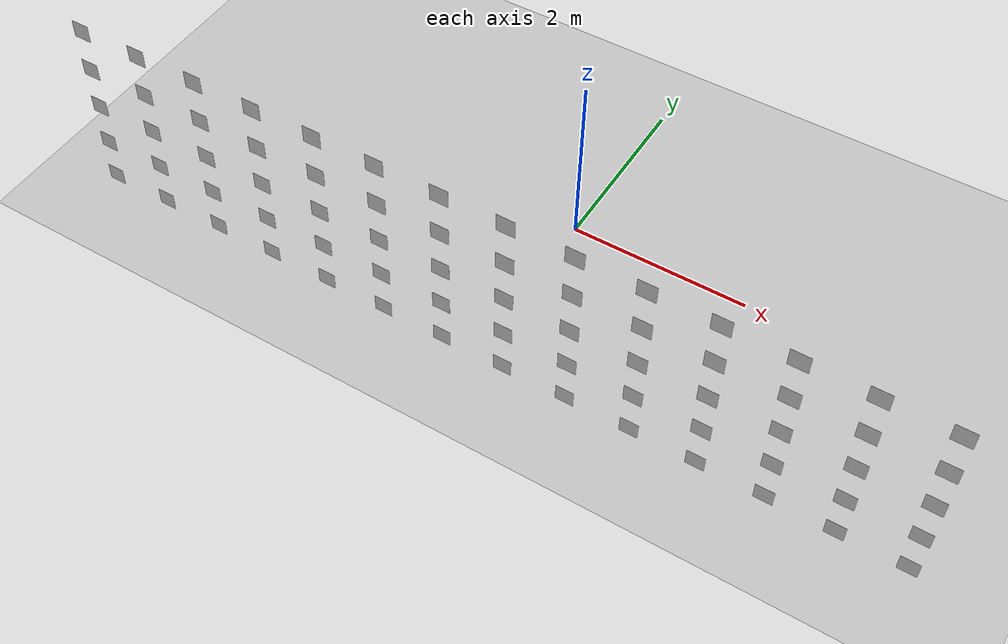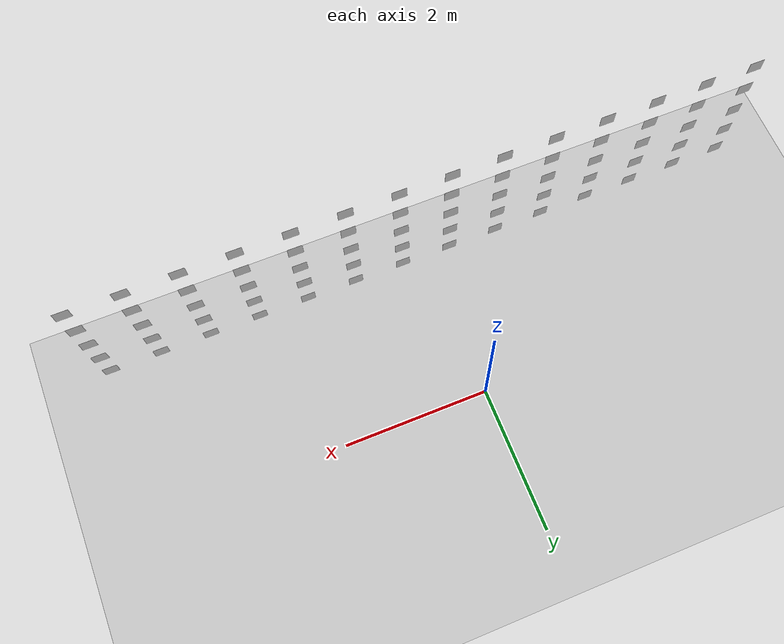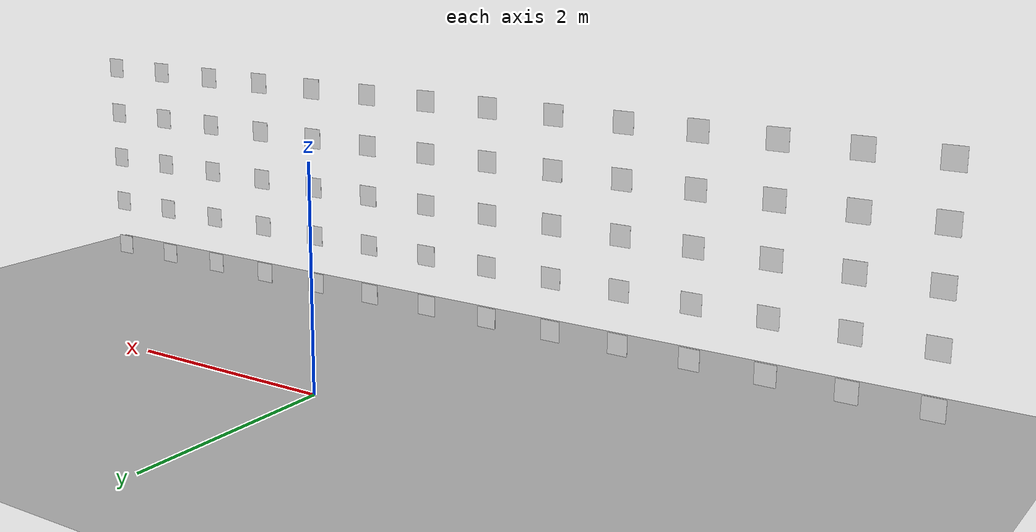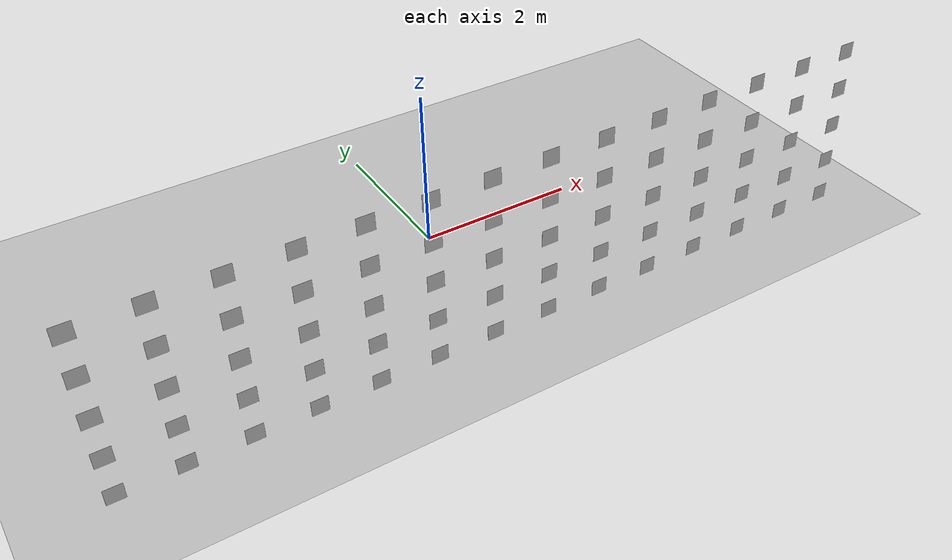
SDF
<sdf version="1.6">
 <world name="default">
  <model name="ground_plane">
   <static>1</static>
   <link name="link">
    <collision name="collision">
     <geometry><plane><normal>0 0 1</normal><size>100 100</size></plane></geometry>
     <surface><friction><ode><mu>100</mu><mu2>50</mu2></ode></friction></surface>
    </collision>
    <visual name="visual">
     <cast_shadows>0</cast_shadows>
     <geometry><plane><normal>0 0 1</normal><size>100 100</size></plane></geometry>
     <material>
      <script><uri>file://media/materials/scripts/gazebo.material</uri><name>Gazebo/Grey</name></script>
     </material>
    </visual>
   </link>
  </model>
  <model name="home1_tag4">
   <model name="aruco170">
    <static>1</static>
    <link name="link">
     <pose>0 0 0.1 0 -0 0</pose>
     <collision name="collision"><geometry><box><size>0.2 0.001 0.2</size></box></geometry></collision>
     <visual name="visual">
      <cast_shadows>0</cast_shadows>
      <geometry><box><size>0.2 0.001 0.2</size></box></geometry>
      <material>
       <script>
        <uri>model://aruco170/materials/scripts</uri>
        <uri>model://aruco170/materials/textures</uri>
        <name>vrc/aruco170</name>
       </script>
      </material>
     </visual>
    </link>
    <pose>0 -2 0.1 0 -0 3.14</pose>
   </model>
   <model name="aruco171">
    <static>1</static>
    <link name="link">
     <pose>0 0 0.1 0 -0 0</pose>
     <collision name="collision"><geometry><box><size>0.2 0.001 0.2</size></box></geometry></collision>
     <visual name="visual">
      <cast_shadows>0</cast_shadows>
      <geometry><box><size>0.2 0.001 0.2</size></box></geometry>
      <material>
       <script>
        <uri>model://aruco171/materials/scripts</uri>
        <uri>model://aruco171/materials/textures</uri>
        <name>vrc/aruco171</name>
       </script>
      </material>
     </visual>
    </link>
    <pose>0.7 -2 0.1 0 -0 3.14</pose>
   </model>
   <model name="aruco172">
    <static>1</static>
    <link name="link">
     <pose>0 0 0.1 0 -0 0</pose>
     <collision name="collision"><geometry><box><size>0.2 0.001 0.2</size></box></geometry></collision>
     <visual name="visual">
      <cast_shadows>0</cast_shadows>
      <geometry><box><size>0.2 0.001 0.2</size></box></geometry>
      <material>
       <script>
        <uri>model://aruco172/materials/scripts</uri>
        <uri>model://aruco172/materials/textures</uri>
        <name>vrc/aruco172</name>
       </script>
      </material>
     </visual>
    </link>
    <pose>1.4 -2 0.1 0 -0 3.14</pose>
   </model>
   <model name="aruco173">
    <static>1</static>
    <link name="link">
     <pose>0 0 0.1 0 -0 0</pose>
     <collision name="collision"><geometry><box><size>0.2 0.001 0.2</size></box></geometry></collision>
     <visual name="visual">
      <cast_shadows>0</cast_shadows>
      <geometry><box><size>0.2 0.001 0.2</size></box></geometry>
      <material>
       <script>
        <uri>model://aruco173/materials/scripts</uri>
        <uri>model://aruco173/materials/textures</uri>
        <name>vrc/aruco173</name>
       </script>
      </material>
     </visual>
    </link>
    <pose>2.1 -2 0.1 0 -0 3.14</pose>
   </model>
   <model name="aruco174">
    <static>1</static>
    <link name="link">
     <pose>0 0 0.1 0 -0 0</pose>
     <collision name="collision"><geometry><box><size>0.2 0.001 0.2</size></box></geometry></collision>
     <visual name="visual">
      <cast_shadows>0</cast_shadows>
      <geometry><box><size>0.2 0.001 0.2</size></box></geometry>
      <material>
       <script>
        <uri>model://aruco174/materials/scripts</uri>
        <uri>model://aruco174/materials/textures</uri>
        <name>vrc/aruco174</name>
       </script>
      </material>
     </visual>
    </link>
    <pose>2.8 -2 0.1 0 -0 3.14</pose>
   </model>
   <model name="aruco175">
    <static>1</static>
    <link name="link">
     <pose>0 0 0.1 0 -0 0</pose>
     <collision name="collision"><geometry><box><size>0.2 0.001 0.2</size></box></geometry></collision>
     <visual name="visual">
      <cast_shadows>0</cast_shadows>
      <geometry><box><size>0.2 0.001 0.2</size></box></geometry>
      <material>
       <script>
        <uri>model://aruco175/materials/scripts</uri>
        <uri>model://aruco175/materials/textures</uri>
        <name>vrc/aruco175</name>
       </script>
      </material>
     </visual>
    </link>
    <pose>3.5 -2 0.1 0 -0 3.14</pose>
   </model>
   <model name="aruco176">
    <static>1</static>
    <link name="link">
     <pose>0 0 0.1 0 -0 0</pose>
     <collision name="collision"><geometry><box><size>0.2 0.001 0.2</size></box></geometry></collision>
     <visual name="visual">
      <cast_shadows>0</cast_shadows>
      <geometry><box><size>0.2 0.001 0.2</size></box></geometry>
      <material>
       <script>
        <uri>model://aruco176/materials/scripts</uri>
        <uri>model://aruco176/materials/textures</uri>
        <name>vrc/aruco176</name>
       </script>
      </material>
     </visual>
    </link>
    <pose>4.2 -2 0.1 0 -0 3.14</pose>
   </model>
   <model name="aruco177">
    <static>1</static>
    <link name="link">
     <pose>0 0 0.1 0 -0 0</pose>
     <collision name="collision"><geometry><box><size>0.2 0.001 0.2</size></box></geometry></collision>
     <visual name="visual">
      <cast_shadows>0</cast_shadows>
      <geometry><box><size>0.2 0.001 0.2</size></box></geometry>
      <material>
       <script>
        <uri>model://aruco177/materials/scripts</uri>
        <uri>model://aruco177/materials/textures</uri>
        <name>vrc/aruco177</name>
       </script>
      </material>
     </visual>
    </link>
    <pose>4.9 -2 0.1 0 -0 3.14</pose>
   </model>
   <model name="aruco178">
    <static>1</static>
    <link name="link">
     <pose>0 0 0.1 0 -0 0</pose>
     <collision name="collision"><geometry><box><size>0.2 0.001 0.2</size></box></geometry></collision>
     <visual name="visual">
      <cast_shadows>0</cast_shadows>
      <geometry><box><size>0.2 0.001 0.2</size></box></geometry>
      <material>
       <script>
        <uri>model://aruco178/materials/scripts</uri>
        <uri>model://aruco178/materials/textures</uri>
        <name>vrc/aruco178</name>
       </script>
      </material>
     </visual>
    </link>
    <pose>5.6 -2 0.1 0 -0 3.14</pose>
   </model>
   <model name="aruco179">
    <static>1</static>
    <link name="link">
     <pose>0 0 0.1 0 -0 0</pose>
     <collision name="collision"><geometry><box><size>0.2 0.001 0.2</size></box></geometry></collision>
     <visual name="visual">
      <cast_shadows>0</cast_shadows>
      <geometry><box><size>0.2 0.001 0.2</size></box></geometry>
      <material>
       <script>
        <uri>model://aruco179/materials/scripts</uri>
        <uri>model://aruco179/materials/textures</uri>
        <name>vrc/aruco179</name>
       </script>
      </material>
     </visual>
    </link>
    <pose>6.3 -2 0.1 0 -0 3.14</pose>
   </model>
   <model name="aruco180">
    <static>1</static>
    <link name="link">
     <pose>0 0 0.1 0 -0 0</pose>
     <collision name="collision"><geometry><box><size>0.2 0.001 0.2</size></box></geometry></collision>
     <visual name="visual">
      <cast_shadows>0</cast_shadows>
      <geometry><box><size>0.2 0.001 0.2</size></box></geometry>
      <material>
       <script>
        <uri>model://aruco180/materials/scripts</uri>
        <uri>model://aruco180/materials/textures</uri>
        <name>vrc/aruco180</name>
       </script>
      </material>
     </visual>
    </link>
    <pose>7 -2 0.1 0 -0 3.14</pose>
   </model>
   <model name="aruco181">
    <static>1</static>
    <link name="link">
     <pose>0 0 0.1 0 -0 0</pose>
     <collision name="collision"><geometry><box><size>0.2 0.001 0.2</size></box></geometry></collision>
     <visual name="visual">
      <cast_shadows>0</cast_shadows>
      <geometry><box><size>0.2 0.001 0.2</size></box></geometry>
      <material>
       <script>
        <uri>model://aruco181/materials/scripts</uri>
        <uri>model://aruco181/materials/textures</uri>
        <name>vrc/aruco181</name>
       </script>
      </material>
     </visual>
    </link>
    <pose>7.7 -2 0.1 0 -0 3.14</pose>
   </model>
   <model name="aruco182">
    <static>1</static>
    <link name="link">
     <pose>0 0 0.1 0 -0 0</pose>
     <collision name="collision"><geometry><box><size>0.2 0.001 0.2</size></box></geometry></collision>
     <visual name="visual">
      <cast_shadows>0</cast_shadows>
      <geometry><box><size>0.2 0.001 0.2</size></box></geometry>
      <material>
       <script>
        <uri>model://aruco182/materials/scripts</uri>
        <uri>model://aruco182/materials/textures</uri>
        <name>vrc/aruco182</name>
       </script>
      </material>
     </visual>
    </link>
    <pose>8.4 -2 0.1 0 -0 3.14</pose>
   </model>
   <model name="aruco183">
    <static>1</static>
    <link name="link">
     <pose>0 0 0.1 0 -0 0</pose>
     <collision name="collision"><geometry><box><size>0.2 0.001 0.2</size></box></geometry></collision>
     <visual name="visual">
      <cast_shadows>0</cast_shadows>
      <geometry><box><size>0.2 0.001 0.2</size></box></geometry>
      <material>
       <script>
        <uri>model://aruco183/materials/scripts</uri>
        <uri>model://aruco183/materials/textures</uri>
        <name>vrc/aruco183</name>
       </script>
      </material>
     </visual>
    </link>
    <pose>9.1 -2 0.1 0 -0 3.14</pose>
   </model>
   <model name="aruco184">
    <static>1</static>
    <link name="link">
     <pose>0 0 0.1 0 -0 0</pose>
     <collision name="collision"><geometry><box><size>0.2 0.001 0.2</size></box></geometry></collision>
     <visual name="visual">
      <cast_shadows>0</cast_shadows>
      <geometry><box><size>0.2 0.001 0.2</size></box></geometry>
      <material>
       <script>
        <uri>model://aruco184/materials/scripts</uri>
        <uri>model://aruco184/materials/textures</uri>
        <name>vrc/aruco184</name>
       </script>
      </material>
     </visual>
    </link>
    <pose>0 -2 0.6 0 -0 3.14</pose>
   </model>
   <model name="aruco185">
    <static>1</static>
    <link name="link">
     <pose>0 0 0.1 0 -0 0</pose>
     <collision name="collision"><geometry><box><size>0.2 0.001 0.2</size></box></geometry></collision>
     <visual name="visual">
      <cast_shadows>0</cast_shadows>
      <geometry><box><size>0.2 0.001 0.2</size></box></geometry>
      <material>
       <script>
        <uri>model://aruco185/materials/scripts</uri>
        <uri>model://aruco185/materials/textures</uri>
        <name>vrc/aruco185</name>
       </script>
      </material>
     </visual>
    </link>
    <pose>0.7 -2 0.6 0 -0 3.14</pose>
   </model>
   <model name="aruco186">
    <static>1</static>
    <link name="link">
     <pose>0 0 0.1 0 -0 0</pose>
     <collision name="collision"><geometry><box><size>0.2 0.001 0.2</size></box></geometry></collision>
     <visual name="visual">
      <cast_shadows>0</cast_shadows>
      <geometry><box><size>0.2 0.001 0.2</size></box></geometry>
      <material>
       <script>
        <uri>model://aruco186/materials/scripts</uri>
        <uri>model://aruco186/materials/textures</uri>
        <name>vrc/aruco186</name>
       </script>
      </material>
     </visual>
    </link>
    <pose>1.4 -2 0.6 0 -0 3.14</pose>
   </model>
   <model name="aruco187">
    <static>1</static>
    <link name="link">
     <pose>0 0 0.1 0 -0 0</pose>
     <collision name="collision"><geometry><box><size>0.2 0.001 0.2</size></box></geometry></collision>
     <visual name="visual">
      <cast_shadows>0</cast_shadows>
      <geometry><box><size>0.2 0.001 0.2</size></box></geometry>
      <material>
       <script>
        <uri>model://aruco187/materials/scripts</uri>
        <uri>model://aruco187/materials/textures</uri>
        <name>vrc/aruco187</name>
       </script>
      </material>
     </visual>
    </link>
    <pose>2.1 -2 0.6 0 -0 3.14</pose>
   </model>
   <model name="aruco188">
    <static>1</static>
    <link name="link">
     <pose>0 0 0.1 0 -0 0</pose>
     <collision name="collision"><geometry><box><size>0.2 0.001 0.2</size></box></geometry></collision>
     <visual name="visual">
      <cast_shadows>0</cast_shadows>
      <geometry><box><size>0.2 0.001 0.2</size></box></geometry>
      <material>
       <script>
        <uri>model://aruco188/materials/scripts</uri>
        <uri>model://aruco188/materials/textures</uri>
        <name>vrc/aruco188</name>
       </script>
      </material>
     </visual>
    </link>
    <pose>2.8 -2 0.6 0 -0 3.14</pose>
   </model>
   <model name="aruco189">
    <static>1</static>
    <link name="link">
     <pose>0 0 0.1 0 -0 0</pose>
     <collision name="collision"><geometry><box><size>0.2 0.001 0.2</size></box></geometry></collision>
     <visual name="visual">
      <cast_shadows>0</cast_shadows>
      <geometry><box><size>0.2 0.001 0.2</size></box></geometry>
      <material>
       <script>
        <uri>model://aruco189/materials/scripts</uri>
        <uri>model://aruco189/materials/textures</uri>
        <name>vrc/aruco189</name>
       </script>
      </material>
     </visual>
    </link>
    <pose>3.5 -2 0.6 0 -0 3.14</pose>
   </model>
   <model name="aruco190">
    <static>1</static>
    <link name="link">
     <pose>0 0 0.1 0 -0 0</pose>
     <collision name="collision"><geometry><box><size>0.2 0.001 0.2</size></box></geometry></collision>
     <visual name="visual">
      <cast_shadows>0</cast_shadows>
      <geometry><box><size>0.2 0.001 0.2</size></box></geometry>
      <material>
       <script>
        <uri>model://aruco190/materials/scripts</uri>
        <uri>model://aruco190/materials/textures</uri>
        <name>vrc/aruco190</name>
       </script>
      </material>
     </visual>
    </link>
    <pose>4.2 -2 0.6 0 -0 3.14</pose>
   </model>
   <model name="aruco191">
    <static>1</static>
    <link name="link">
     <pose>0 0 0.1 0 -0 0</pose>
     <collision name="collision"><geometry><box><size>0.2 0.001 0.2</size></box></geometry></collision>
     <visual name="visual">
      <cast_shadows>0</cast_shadows>
      <geometry><box><size>0.2 0.001 0.2</size></box></geometry>
      <material>
       <script>
        <uri>model://aruco191/materials/scripts</uri>
        <uri>model://aruco191/materials/textures</uri>
        <name>vrc/aruco191</name>
       </script>
      </material>
     </visual>
    </link>
    <pose>4.9 -2 0.6 0 -0 3.14</pose>
   </model>
   <model name="aruco192">
    <static>1</static>
    <link name="link">
     <pose>0 0 0.1 0 -0 0</pose>
     <collision name="collision"><geometry><box><size>0.2 0.001 0.2</size></box></geometry></collision>
     <visual name="visual">
      <cast_shadows>0</cast_shadows>
      <geometry><box><size>0.2 0.001 0.2</size></box></geometry>
      <material>
       <script>
        <uri>model://aruco192/materials/scripts</uri>
        <uri>model://aruco192/materials/textures</uri>
        <name>vrc/aruco192</name>
       </script>
      </material>
     </visual>
    </link>
    <pose>5.6 -2 0.6 0 -0 3.14</pose>
   </model>
   <model name="aruco193">
    <static>1</static>
    <link name="link">
     <pose>0 0 0.1 0 -0 0</pose>
     <collision name="collision"><geometry><box><size>0.2 0.001 0.2</size></box></geometry></collision>
     <visual name="visual">
      <cast_shadows>0</cast_shadows>
      <geometry><box><size>0.2 0.001 0.2</size></box></geometry>
      <material>
       <script>
        <uri>model://aruco193/materials/scripts</uri>
        <uri>model://aruco193/materials/textures</uri>
        <name>vrc/aruco193</name>
       </script>
      </material>
     </visual>
    </link>
    <pose>6.3 -2 0.6 0 -0 3.14</pose>
   </model>
   <model name="aruco194">
    <static>1</static>
    <link name="link">
     <pose>0 0 0.1 0 -0 0</pose>
     <collision name="collision"><geometry><box><size>0.2 0.001 0.2</size></box></geometry></collision>
     <visual name="visual">
      <cast_shadows>0</cast_shadows>
      <geometry><box><size>0.2 0.001 0.2</size></box></geometry>
      <material>
       <script>
        <uri>model://aruco194/materials/scripts</uri>
        <uri>model://aruco194/materials/textures</uri>
        <name>vrc/aruco194</name>
       </script>
      </material>
     </visual>
    </link>
    <pose>7 -2 0.6 0 -0 3.14</pose>
   </model>
   <model name="aruco195">
    <static>1</static>
    <link name="link">
     <pose>0 0 0.1 0 -0 0</pose>
     <collision name="collision"><geometry><box><size>0.2 0.001 0.2</size></box></geometry></collision>
     <visual name="visual">
      <cast_shadows>0</cast_shadows>
      <geometry><box><size>0.2 0.001 0.2</size></box></geometry>
      <material>
       <script>
        <uri>model://aruco195/materials/scripts</uri>
        <uri>model://aruco195/materials/textures</uri>
        <name>vrc/aruco195</name>
       </script>
      </material>
     </visual>
    </link>
    <pose>7.7 -2 0.6 0 -0 3.14</pose>
   </model>
   <model name="aruco196">
    <static>1</static>
    <link name="link">
     <pose>0 0 0.1 0 -0 0</pose>
     <collision name="collision"><geometry><box><size>0.2 0.001 0.2</size></box></geometry></collision>
     <visual name="visual">
      <cast_shadows>0</cast_shadows>
      <geometry><box><size>0.2 0.001 0.2</size></box></geometry>
      <material>
       <script>
        <uri>model://aruco196/materials/scripts</uri>
        <uri>model://aruco196/materials/textures</uri>
        <name>vrc/aruco196</name>
       </script>
      </material>
     </visual>
    </link>
    <pose>8.4 -2 0.6 0 -0 3.14</pose>
   </model>
   <model name="aruco197">
    <static>1</static>
    <link name="link">
     <pose>0 0 0.1 0 -0 0</pose>
     <collision name="collision"><geometry><box><size>0.2 0.001 0.2</size></box></geometry></collision>
     <visual name="visual">
      <cast_shadows>0</cast_shadows>
      <geometry><box><size>0.2 0.001 0.2</size></box></geometry>
      <material>
       <script>
        <uri>model://aruco197/materials/scripts</uri>
        <uri>model://aruco197/materials/textures</uri>
        <name>vrc/aruco197</name>
       </script>
      </material>
     </visual>
    </link>
    <pose>9.1 -2 0.6 0 -0 3.14</pose>
   </model>
   <model name="aruco198">
    <static>1</static>
    <link name="link">
     <pose>0 0 0.1 0 -0 0</pose>
     <collision name="collision"><geometry><box><size>0.2 0.001 0.2</size></box></geometry></collision>
     <visual name="visual">
      <cast_shadows>0</cast_shadows>
      <geometry><box><size>0.2 0.001 0.2</size></box></geometry>
      <material>
       <script>
        <uri>model://aruco198/materials/scripts</uri>
        <uri>model://aruco198/materials/textures</uri>
        <name>vrc/aruco198</name>
       </script>
      </material>
     </visual>
    </link>
    <pose>0 -2 1.1 0 -0 3.14</pose>
   </model>
   <model name="aruco199">
    <static>1</static>
    <link name="link">
     <pose>0 0 0.1 0 -0 0</pose>
     <collision name="collision"><geometry><box><size>0.2 0.001 0.2</size></box></geometry></collision>
     <visual name="visual">
      <cast_shadows>0</cast_shadows>
      <geometry><box><size>0.2 0.001 0.2</size></box></geometry>
      <material>
       <script>
        <uri>model://aruco199/materials/scripts</uri>
        <uri>model://aruco199/materials/textures</uri>
        <name>vrc/aruco199</name>
       </script>
      </material>
     </visual>
    </link>
    <pose>0.7 -2 1.1 0 -0 3.14</pose>
   </model>
   <model name="aruco200">
    <static>1</static>
    <link name="link">
     <pose>0 0 0.1 0 -0 0</pose>
     <collision name="collision"><geometry><box><size>0.2 0.001 0.2</size></box></geometry></collision>
     <visual name="visual">
      <cast_shadows>0</cast_shadows>
      <geometry><box><size>0.2 0.001 0.2</size></box></geometry>
      <material>
       <script>
        <uri>model://aruco200/materials/scripts</uri>
        <uri>model://aruco200/materials/textures</uri>
        <name>vrc/aruco200</name>
       </script>
      </material>
     </visual>
    </link>
    <pose>1.4 -2 1.1 0 -0 3.14</pose>
   </model>
   <model name="aruco201">
    <static>1</static>
    <link name="link">
     <pose>0 0 0.1 0 -0 0</pose>
     <collision name="collision"><geometry><box><size>0.2 0.001 0.2</size></box></geometry></collision>
     <visual name="visual">
      <cast_shadows>0</cast_shadows>
      <geometry><box><size>0.2 0.001 0.2</size></box></geometry>
      <material>
       <script>
        <uri>model://aruco201/materials/scripts</uri>
        <uri>model://aruco201/materials/textures</uri>
        <name>vrc/aruco201</name>
       </script>
      </material>
     </visual>
    </link>
    <pose>2.1 -2 1.1 0 -0 3.14</pose>
   </model>
   <model name="aruco202">
    <static>1</static>
    <link name="link">
     <pose>0 0 0.1 0 -0 0</pose>
     <collision name="collision"><geometry><box><size>0.2 0.001 0.2</size></box></geometry></collision>
     <visual name="visual">
      <cast_shadows>0</cast_shadows>
      <geometry><box><size>0.2 0.001 0.2</size></box></geometry>
      <material>
       <script>
        <uri>model://aruco202/materials/scripts</uri>
        <uri>model://aruco202/materials/textures</uri>
        <name>vrc/aruco202</name>
       </script>
      </material>
     </visual>
    </link>
    <pose>2.8 -2 1.1 0 -0 3.14</pose>
   </model>
   <model name="aruco203">
    <static>1</static>
    <link name="link">
     <pose>0 0 0.1 0 -0 0</pose>
     <collision name="collision"><geometry><box><size>0.2 0.001 0.2</size></box></geometry></collision>
     <visual name="visual">
      <cast_shadows>0</cast_shadows>
      <geometry><box><size>0.2 0.001 0.2</size></box></geometry>
      <material>
       <script>
        <uri>model://aruco203/materials/scripts</uri>
        <uri>model://aruco203/materials/textures</uri>
        <name>vrc/aruco203</name>
       </script>
      </material>
     </visual>
    </link>
    <pose>3.5 -2 1.1 0 -0 3.14</pose>
   </model>
   <model name="aruco204">
    <static>1</static>
    <link name="link">
     <pose>0 0 0.1 0 -0 0</pose>
     <collision name="collision"><geometry><box><size>0.2 0.001 0.2</size></box></geometry></collision>
     <visual name="visual">
      <cast_shadows>0</cast_shadows>
      <geometry><box><size>0.2 0.001 0.2</size></box></geometry>
      <material>
       <script>
        <uri>model://aruco204/materials/scripts</uri>
        <uri>model://aruco204/materials/textures</uri>
        <name>vrc/aruco204</name>
       </script>
      </material>
     </visual>
    </link>
    <pose>4.2 -2 1.1 0 -0 3.14</pose>
   </model>
   <model name="aruco205">
    <static>1</static>
    <link name="link">
     <pose>0 0 0.1 0 -0 0</pose>
     <collision name="collision"><geometry><box><size>0.2 0.001 0.2</size></box></geometry></collision>
     <visual name="visual">
      <cast_shadows>0</cast_shadows>
      <geometry><box><size>0.2 0.001 0.2</size></box></geometry>
      <material>
       <script>
        <uri>model://aruco205/materials/scripts</uri>
        <uri>model://aruco205/materials/textures</uri>
        <name>vrc/aruco205</name>
       </script>
      </material>
     </visual>
    </link>
    <pose>4.9 -2 1.1 0 -0 3.14</pose>
   </model>
   <model name="aruco206">
    <static>1</static>
    <link name="link">
     <pose>0 0 0.1 0 -0 0</pose>
     <collision name="collision"><geometry><box><size>0.2 0.001 0.2</size></box></geometry></collision>
     <visual name="visual">
      <cast_shadows>0</cast_shadows>
      <geometry><box><size>0.2 0.001 0.2</size></box></geometry>
      <material>
       <script>
        <uri>model://aruco206/materials/scripts</uri>
        <uri>model://aruco206/materials/textures</uri>
        <name>vrc/aruco206</name>
       </script>
      </material>
     </visual>
    </link>
    <pose>5.6 -2 1.1 0 -0 3.14</pose>
   </model>
   <model name="aruco207">
    <static>1</static>
    <link name="link">
     <pose>0 0 0.1 0 -0 0</pose>
     <collision name="collision"><geometry><box><size>0.2 0.001 0.2</size></box></geometry></collision>
     <visual name="visual">
      <cast_shadows>0</cast_shadows>
      <geometry><box><size>0.2 0.001 0.2</size></box></geometry>
      <material>
       <script>
        <uri>model://aruco207/materials/scripts</uri>
        <uri>model://aruco207/materials/textures</uri>
        <name>vrc/aruco207</name>
       </script>
      </material>
     </visual>
    </link>
    <pose>6.3 -2 1.1 0 -0 3.14</pose>
   </model>
   <model name="aruco208">
    <static>1</static>
    <link name="link">
     <pose>0 0 0.1 0 -0 0</pose>
     <collision name="collision"><geometry><box><size>0.2 0.001 0.2</size></box></geometry></collision>
     <visual name="visual">
      <cast_shadows>0</cast_shadows>
      <geometry><box><size>0.2 0.001 0.2</size></box></geometry>
      <material>
       <script>
        <uri>model://aruco208/materials/scripts</uri>
        <uri>model://aruco208/materials/textures</uri>
        <name>vrc/aruco208</name>
       </script>
      </material>
     </visual>
    </link>
    <pose>7 -2 1.1 0 -0 3.14</pose>
   </model>
   <model name="aruco209">
    <static>1</static>
    <link name="link">
     <pose>0 0 0.1 0 -0 0</pose>
     <collision name="collision"><geometry><box><size>0.2 0.001 0.2</size></box></geometry></collision>
     <visual name="visual">
      <cast_shadows>0</cast_shadows>
      <geometry><box><size>0.2 0.001 0.2</size></box></geometry>
      <material>
       <script>
        <uri>model://aruco209/materials/scripts</uri>
        <uri>model://aruco209/materials/textures</uri>
        <name>vrc/aruco209</name>
       </script>
      </material>
     </visual>
    </link>
    <pose>7.7 -2 1.1 0 -0 3.14</pose>
   </model>
   <model name="aruco210">
    <static>1</static>
    <link name="link">
     <pose>0 0 0.1 0 -0 0</pose>
     <collision name="collision"><geometry><box><size>0.2 0.001 0.2</size></box></geometry></collision>
     <visual name="visual">
      <cast_shadows>0</cast_shadows>
      <geometry><box><size>0.2 0.001 0.2</size></box></geometry>
      <material>
       <script>
        <uri>model://aruco210/materials/scripts</uri>
        <uri>model://aruco210/materials/textures</uri>
        <name>vrc/aruco210</name>
       </script>
      </material>
     </visual>
    </link>
    <pose>8.4 -2 1.1 0 -0 3.14</pose>
   </model>
   <model name="aruco211">
    <static>1</static>
    <link name="link">
     <pose>0 0 0.1 0 -0 0</pose>
     <collision name="collision"><geometry><box><size>0.2 0.001 0.2</size></box></geometry></collision>
     <visual name="visual">
      <cast_shadows>0</cast_shadows>
      <geometry><box><size>0.2 0.001 0.2</size></box></geometry>
      <material>
       <script>
        <uri>model://aruco211/materials/scripts</uri>
        <uri>model://aruco211/materials/textures</uri>
        <name>vrc/aruco211</name>
       </script>
      </material>
     </visual>
    </link>
    <pose>9.1 -2 1.1 0 -0 3.14</pose>
   </model>
   <model name="aruco212">
    <static>1</static>
    <link name="link">
     <pose>0 0 0.1 0 -0 0</pose>
     <collision name="collision"><geometry><box><size>0.2 0.001 0.2</size></box></geometry></collision>
     <visual name="visual">
      <cast_shadows>0</cast_shadows>
      <geometry><box><size>0.2 0.001 0.2</size></box></geometry>
      <material>
       <script>
        <uri>model://aruco212/materials/scripts</uri>
        <uri>model://aruco212/materials/textures</uri>
        <name>vrc/aruco212</name>
       </script>
      </material>
     </visual>
    </link>
    <pose>0 -2 1.6 0 -0 3.14</pose>
   </model>
   <model name="aruco213">
    <static>1</static>
    <link name="link">
     <pose>0 0 0.1 0 -0 0</pose>
     <collision name="collision"><geometry><box><size>0.2 0.001 0.2</size></box></geometry></collision>
     <visual name="visual">
      <cast_shadows>0</cast_shadows>
      <geometry><box><size>0.2 0.001 0.2</size></box></geometry>
      <material>
       <script>
        <uri>model://aruco213/materials/scripts</uri>
        <uri>model://aruco213/materials/textures</uri>
        <name>vrc/aruco213</name>
       </script>
      </material>
     </visual>
    </link>
    <pose>0.7 -2 1.6 0 -0 3.14</pose>
   </model>
   <model name="aruco214">
    <static>1</static>
    <link name="link">
     <pose>0 0 0.1 0 -0 0</pose>
     <collision name="collision"><geometry><box><size>0.2 0.001 0.2</size></box></geometry></collision>
     <visual name="visual">
      <cast_shadows>0</cast_shadows>
      <geometry><box><size>0.2 0.001 0.2</size></box></geometry>
      <material>
       <script>
        <uri>model://aruco214/materials/scripts</uri>
        <uri>model://aruco214/materials/textures</uri>
        <name>vrc/aruco214</name>
       </script>
      </material>
     </visual>
    </link>
    <pose>1.4 -2 1.6 0 -0 3.14</pose>
   </model>
   <model name="aruco215">
    <static>1</static>
    <link name="link">
     <pose>0 0 0.1 0 -0 0</pose>
     <collision name="collision"><geometry><box><size>0.2 0.001 0.2</size></box></geometry></collision>
     <visual name="visual">
      <cast_shadows>0</cast_shadows>
      <geometry><box><size>0.2 0.001 0.2</size></box></geometry>
      <material>
       <script>
        <uri>model://aruco215/materials/scripts</uri>
        <uri>model://aruco215/materials/textures</uri>
        <name>vrc/aruco215</name>
       </script>
      </material>
     </visual>
    </link>
    <pose>2.1 -2 1.6 0 -0 3.14</pose>
   </model>
   <model name="aruco216">
    <static>1</static>
    <link name="link">
     <pose>0 0 0.1 0 -0 0</pose>
     <collision name="collision"><geometry><box><size>0.2 0.001 0.2</size></box></geometry></collision>
     <visual name="visual">
      <cast_shadows>0</cast_shadows>
      <geometry><box><size>0.2 0.001 0.2</size></box></geometry>
      <material>
       <script>
        <uri>model://aruco216/materials/scripts</uri>
        <uri>model://aruco216/materials/textures</uri>
        <name>vrc/aruco216</name>
       </script>
      </material>
     </visual>
    </link>
    <pose>2.8 -2 1.6 0 -0 3.14</pose>
   </model>
   <model name="aruco217">
    <static>1</static>
    <link name="link">
     <pose>0 0 0.1 0 -0 0</pose>
     <collision name="collision"><geometry><box><size>0.2 0.001 0.2</size></box></geometry></collision>
     <visual name="visual">
      <cast_shadows>0</cast_shadows>
      <geometry><box><size>0.2 0.001 0.2</size></box></geometry>
      <material>
       <script>
        <uri>model://aruco217/materials/scripts</uri>
        <uri>model://aruco217/materials/textures</uri>
        <name>vrc/aruco217</name>
       </script>
      </material>
     </visual>
    </link>
    <pose>3.5 -2 1.6 0 -0 3.14</pose>
   </model>
   <model name="aruco218">
    <static>1</static>
    <link name="link">
     <pose>0 0 0.1 0 -0 0</pose>
     <collision name="collision"><geometry><box><size>0.2 0.001 0.2</size></box></geometry></collision>
     <visual name="visual">
      <cast_shadows>0</cast_shadows>
      <geometry><box><size>0.2 0.001 0.2</size></box></geometry>
      <material>
       <script>
        <uri>model://aruco218/materials/scripts</uri>
        <uri>model://aruco218/materials/textures</uri>
        <name>vrc/aruco218</name>
       </script>
      </material>
     </visual>
    </link>
    <pose>4.2 -2 1.6 0 -0 3.14</pose>
   </model>
   <model name="aruco219">
    <static>1</static>
    <link name="link">
     <pose>0 0 0.1 0 -0 0</pose>
     <collision name="collision"><geometry><box><size>0.2 0.001 0.2</size></box></geometry></collision>
     <visual name="visual">
      <cast_shadows>0</cast_shadows>
      <geometry><box><size>0.2 0.001 0.2</size></box></geometry>
      <material>
       <script>
        <uri>model://aruco219/materials/scripts</uri>
        <uri>model://aruco219/materials/textures</uri>
        <name>vrc/aruco219</name>
       </script>
      </material>
     </visual>
    </link>
    <pose>4.9 -2 1.6 0 -0 3.14</pose>
   </model>
   <model name="aruco220">
    <static>1</static>
    <link name="link">
     <pose>0 0 0.1 0 -0 0</pose>
     <collision name="collision"><geometry><box><size>0.2 0.001 0.2</size></box></geometry></collision>
     <visual name="visual">
      <cast_shadows>0</cast_shadows>
      <geometry><box><size>0.2 0.001 0.2</size></box></geometry>
      <material>
       <script>
        <uri>model://aruco220/materials/scripts</uri>
        <uri>model://aruco220/materials/textures</uri>
        <name>vrc/aruco220</name>
       </script>
      </material>
     </visual>
    </link>
    <pose>5.6 -2 1.6 0 -0 3.14</pose>
   </model>
   <model name="aruco221">
    <static>1</static>
    <link name="link">
     <pose>0 0 0.1 0 -0 0</pose>
     <collision name="collision"><geometry><box><size>0.2 0.001 0.2</size></box></geometry></collision>
     <visual name="visual">
      <cast_shadows>0</cast_shadows>
      <geometry><box><size>0.2 0.001 0.2</size></box></geometry>
      <material>
       <script>
        <uri>model://aruco221/materials/scripts</uri>
        <uri>model://aruco221/materials/textures</uri>
        <name>vrc/aruco221</name>
       </script>
      </material>
     </visual>
    </link>
    <pose>6.3 -2 1.6 0 -0 3.14</pose>
   </model>
   <model name="aruco222">
    <static>1</static>
    <link name="link">
     <pose>0 0 0.1 0 -0 0</pose>
     <collision name="collision"><geometry><box><size>0.2 0.001 0.2</size></box></geometry></collision>
     <visual name="visual">
      <cast_shadows>0</cast_shadows>
      <geometry><box><size>0.2 0.001 0.2</size></box></geometry>
      <material>
       <script>
        <uri>model://aruco222/materials/scripts</uri>
        <uri>model://aruco222/materials/textures</uri>
        <name>vrc/aruco222</name>
       </script>
      </material>
     </visual>
    </link>
    <pose>7 -2 1.6 0 -0 3.14</pose>
   </model>
   <model name="aruco223">
    <static>1</static>
    <link name="link">
     <pose>0 0 0.1 0 -0 0</pose>
     <collision name="collision"><geometry><box><size>0.2 0.001 0.2</size></box></geometry></collision>
     <visual name="visual">
      <cast_shadows>0</cast_shadows>
      <geometry><box><size>0.2 0.001 0.2</size></box></geometry>
      <material>
       <script>
        <uri>model://aruco223/materials/scripts</uri>
        <uri>model://aruco223/materials/textures</uri>
        <name>vrc/aruco223</name>
       </script>
      </material>
     </visual>
    </link>
    <pose>7.7 -2 1.6 0 -0 3.14</pose>
   </model>
   <model name="aruco224">
    <static>1</static>
    <link name="link">
     <pose>0 0 0.1 0 -0 0</pose>
     <collision name="collision"><geometry><box><size>0.2 0.001 0.2</size></box></geometry></collision>
     <visual name="visual">
      <cast_shadows>0</cast_shadows>
      <geometry><box><size>0.2 0.001 0.2</size></box></geometry>
      <material>
       <script>
        <uri>model://aruco224/materials/scripts</uri>
        <uri>model://aruco224/materials/textures</uri>
        <name>vrc/aruco224</name>
       </script>
      </material>
     </visual>
    </link>
    <pose>8.4 -2 1.6 0 -0 3.14</pose>
   </model>
   <model name="aruco225">
    <static>1</static>
    <link name="link">
     <pose>0 0 0.1 0 -0 0</pose>
     <collision name="collision"><geometry><box><size>0.2 0.001 0.2</size></box></geometry></collision>
     <visual name="visual">
      <cast_shadows>0</cast_shadows>
      <geometry><box><size>0.2 0.001 0.2</size></box></geometry>
      <material>
       <script>
        <uri>model://aruco225/materials/scripts</uri>
        <uri>model://aruco225/materials/textures</uri>
        <name>vrc/aruco225</name>
       </script>
      </material>
     </visual>
    </link>
    <pose>9.1 -2 1.6 0 -0 3.14</pose>
   </model>
   <model name="aruco226">
    <static>1</static>
    <link name="link">
     <pose>0 0 0.1 0 -0 0</pose>
     <collision name="collision"><geometry><box><size>0.2 0.001 0.2</size></box></geometry></collision>
     <visual name="visual">
      <cast_shadows>0</cast_shadows>
      <geometry><box><size>0.2 0.001 0.2</size></box></geometry>
      <material>
       <script>
        <uri>model://aruco226/materials/scripts</uri>
        <uri>model://aruco226/materials/textures</uri>
        <name>vrc/aruco226</name>
       </script>
      </material>
     </visual>
    </link>
    <pose>0 -2 2.1 0 -0 3.14</pose>
   </model>
   <model name="aruco227">
    <static>1</static>
    <link name="link">
     <pose>0 0 0.1 0 -0 0</pose>
     <collision name="collision"><geometry><box><size>0.2 0.001 0.2</size></box></geometry></collision>
     <visual name="visual">
      <cast_shadows>0</cast_shadows>
      <geometry><box><size>0.2 0.001 0.2</size></box></geometry>
      <material>
       <script>
        <uri>model://aruco227/materials/scripts</uri>
        <uri>model://aruco227/materials/textures</uri>
        <name>vrc/aruco227</name>
       </script>
      </material>
     </visual>
    </link>
    <pose>0.7 -2 2.1 0 -0 3.14</pose>
   </model>
   <model name="aruco228">
    <static>1</static>
    <link name="link">
     <pose>0 0 0.1 0 -0 0</pose>
     <collision name="collision"><geometry><box><size>0.2 0.001 0.2</size></box></geometry></collision>
     <visual name="visual">
      <cast_shadows>0</cast_shadows>
      <geometry><box><size>0.2 0.001 0.2</size></box></geometry>
      <material>
       <script>
        <uri>model://aruco228/materials/scripts</uri>
        <uri>model://aruco228/materials/textures</uri>
        <name>vrc/aruco228</name>
       </script>
      </material>
     </visual>
    </link>
    <pose>1.4 -2 2.1 0 -0 3.14</pose>
   </model>
   <model name="aruco229">
    <static>1</static>
    <link name="link">
     <pose>0 0 0.1 0 -0 0</pose>
     <collision name="collision"><geometry><box><size>0.2 0.001 0.2</size></box></geometry></collision>
     <visual name="visual">
      <cast_shadows>0</cast_shadows>
      <geometry><box><size>0.2 0.001 0.2</size></box></geometry>
      <material>
       <script>
        <uri>model://aruco229/materials/scripts</uri>
        <uri>model://aruco229/materials/textures</uri>
        <name>vrc/aruco229</name>
       </script>
      </material>
     </visual>
    </link>
    <pose>2.1 -2 2.1 0 -0 3.14</pose>
   </model>
   <model name="aruco230">
    <static>1</static>
    <link name="link">
     <pose>0 0 0.1 0 -0 0</pose>
     <collision name="collision"><geometry><box><size>0.2 0.001 0.2</size></box></geometry></collision>
     <visual name="visual">
      <cast_shadows>0</cast_shadows>
      <geometry><box><size>0.2 0.001 0.2</size></box></geometry>
      <material>
       <script>
        <uri>model://aruco230/materials/scripts</uri>
        <uri>model://aruco230/materials/textures</uri>
        <name>vrc/aruco230</name>
       </script>
      </material>
     </visual>
    </link>
    <pose>2.8 -2 2.1 0 -0 3.14</pose>
   </model>
   <model name="aruco231">
    <static>1</static>
    <link name="link">
     <pose>0 0 0.1 0 -0 0</pose>
     <collision name="collision"><geometry><box><size>0.2 0.001 0.2</size></box></geometry></collision>
     <visual name="visual">
      <cast_shadows>0</cast_shadows>
      <geometry><box><size>0.2 0.001 0.2</size></box></geometry>
      <material>
       <script>
        <uri>model://aruco231/materials/scripts</uri>
        <uri>model://aruco231/materials/textures</uri>
        <name>vrc/aruco231</name>
       </script>
      </material>
     </visual>
    </link>
    <pose>3.5 -2 2.1 0 -0 3.14</pose>
   </model>
   <model name="aruco232">
    <static>1</static>
    <link name="link">
     <pose>0 0 0.1 0 -0 0</pose>
     <collision name="collision"><geometry><box><size>0.2 0.001 0.2</size></box></geometry></collision>
     <visual name="visual">
      <cast_shadows>0</cast_shadows>
      <geometry><box><size>0.2 0.001 0.2</size></box></geometry>
      <material>
       <script>
        <uri>model://aruco232/materials/scripts</uri>
        <uri>model://aruco232/materials/textures</uri>
        <name>vrc/aruco232</name>
       </script>
      </material>
     </visual>
    </link>
    <pose>4.2 -2 2.1 0 -0 3.14</pose>
   </model>
   <model name="aruco233">
    <static>1</static>
    <link name="link">
     <pose>0 0 0.1 0 -0 0</pose>
     <collision name="collision"><geometry><box><size>0.2 0.001 0.2</size></box></geometry></collision>
     <visual name="visual">
      <cast_shadows>0</cast_shadows>
      <geometry><box><size>0.2 0.001 0.2</size></box></geometry>
      <material>
       <script>
        <uri>model://aruco233/materials/scripts</uri>
        <uri>model://aruco233/materials/textures</uri>
        <name>vrc/aruco233</name>
       </script>
      </material>
     </visual>
    </link>
    <pose>4.9 -2 2.1 0 -0 3.14</pose>
   </model>
   <model name="aruco234">
    <static>1</static>
    <link name="link">
     <pose>0 0 0.1 0 -0 0</pose>
     <collision name="collision"><geometry><box><size>0.2 0.001 0.2</size></box></geometry></collision>
     <visual name="visual">
      <cast_shadows>0</cast_shadows>
      <geometry><box><size>0.2 0.001 0.2</size></box></geometry>
      <material>
       <script>
        <uri>model://aruco234/materials/scripts</uri>
        <uri>model://aruco234/materials/textures</uri>
        <name>vrc/aruco234</name>
       </script>
      </material>
     </visual>
    </link>
    <pose>5.6 -2 2.1 0 -0 3.14</pose>
   </model>
   <model name="aruco235">
    <static>1</static>
    <link name="link">
     <pose>0 0 0.1 0 -0 0</pose>
     <collision name="collision"><geometry><box><size>0.2 0.001 0.2</size></box></geometry></collision>
     <visual name="visual">
      <cast_shadows>0</cast_shadows>
      <geometry><box><size>0.2 0.001 0.2</size></box></geometry>
      <material>
       <script>
        <uri>model://aruco235/materials/scripts</uri>
        <uri>model://aruco235/materials/textures</uri>
        <name>vrc/aruco235</name>
       </script>
      </material>
     </visual>
    </link>
    <pose>6.3 -2 2.1 0 -0 3.14</pose>
   </model>
   <model name="aruco236">
    <static>1</static>
    <link name="link">
     <pose>0 0 0.1 0 -0 0</pose>
     <collision name="collision"><geometry><box><size>0.2 0.001 0.2</size></box></geometry></collision>
     <visual name="visual">
      <cast_shadows>0</cast_shadows>
      <geometry><box><size>0.2 0.001 0.2</size></box></geometry>
      <material>
       <script>
        <uri>model://aruco236/materials/scripts</uri>
        <uri>model://aruco236/materials/textures</uri>
        <name>vrc/aruco236</name>
       </script>
      </material>
     </visual>
    </link>
    <pose>7 -2 2.1 0 -0 3.14</pose>
   </model>
   <model name="aruco237">
    <static>1</static>
    <link name="link">
     <pose>0 0 0.1 0 -0 0</pose>
     <collision name="collision"><geometry><box><size>0.2 0.001 0.2</size></box></geometry></collision>
     <visual name="visual">
      <cast_shadows>0</cast_shadows>
      <geometry><box><size>0.2 0.001 0.2</size></box></geometry>
      <material>
       <script>
        <uri>model://aruco237/materials/scripts</uri>
        <uri>model://aruco237/materials/textures</uri>
        <name>vrc/aruco237</name>
       </script>
      </material>
     </visual>
    </link>
    <pose>7.7 -2 2.1 0 -0 3.14</pose>
   </model>
   <model name="aruco238">
    <static>1</static>
    <link name="link">
     <pose>0 0 0.1 0 -0 0</pose>
     <collision name="collision"><geometry><box><size>0.2 0.001 0.2</size></box></geometry></collision>
     <visual name="visual">
      <cast_shadows>0</cast_shadows>
      <geometry><box><size>0.2 0.001 0.2</size></box></geometry>
      <material>
       <script>
        <uri>model://aruco238/materials/scripts</uri>
        <uri>model://aruco238/materials/textures</uri>
        <name>vrc/aruco238</name>
       </script>
      </material>
     </visual>
    </link>
    <pose>8.4 -2 2.1 0 -0 3.14</pose>
   </model>
   <model name="aruco239">
    <static>1</static>
    <link name="link">
     <pose>0 0 0.1 0 -0 0</pose>
     <collision name="collision"><geometry><box><size>0.2 0.001 0.2</size></box></geometry></collision>
     <visual name="visual">
      <cast_shadows>0</cast_shadows>
      <geometry><box><size>0.2 0.001 0.2</size></box></geometry>
      <material>
       <script>
        <uri>model://aruco239/materials/scripts</uri>
        <uri>model://aruco239/materials/textures</uri>
        <name>vrc/aruco239</name>
       </script>
      </material>
     </visual>
    </link>
    <pose>9.1 -2 2.1 0 -0 3.14</pose>
   </model>
   <static>0</static>
   <pose>-4.54085 -0.103582 0 0 -0 0</pose>
  </model>
 </world>
</sdf>
